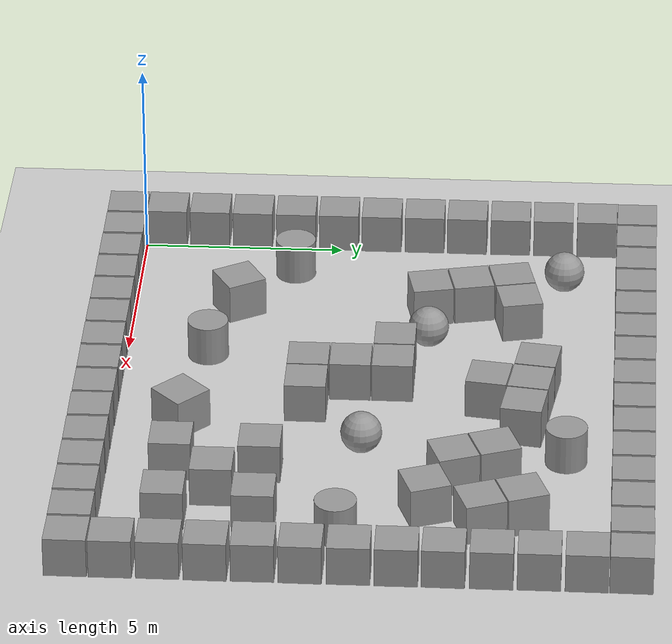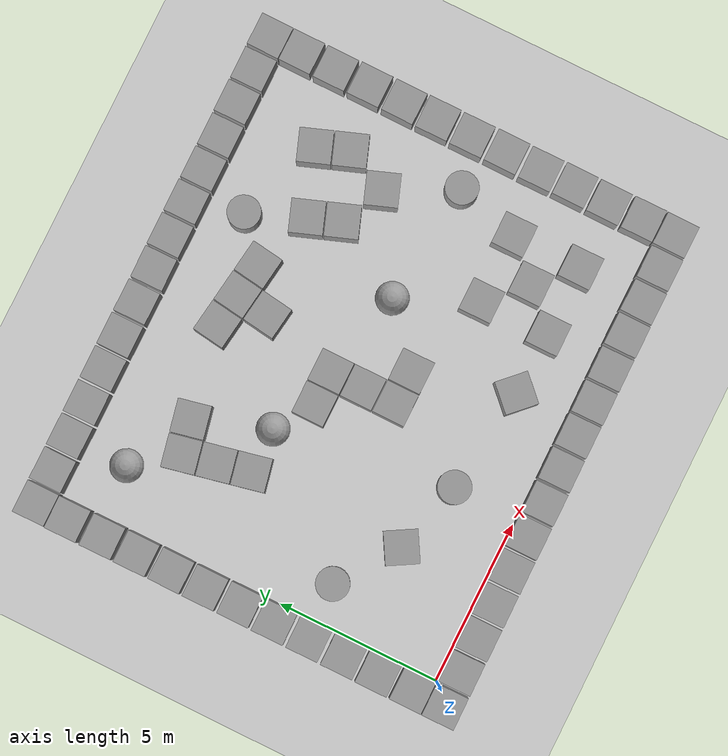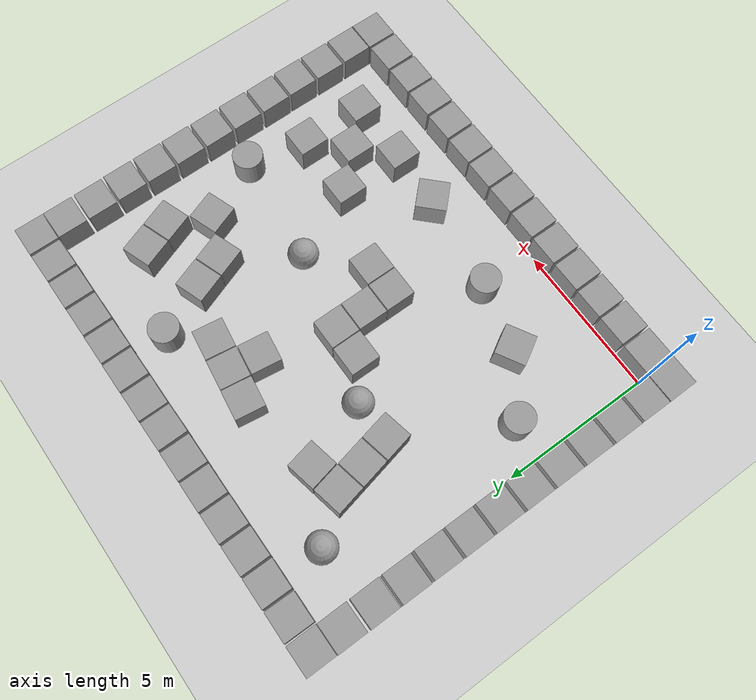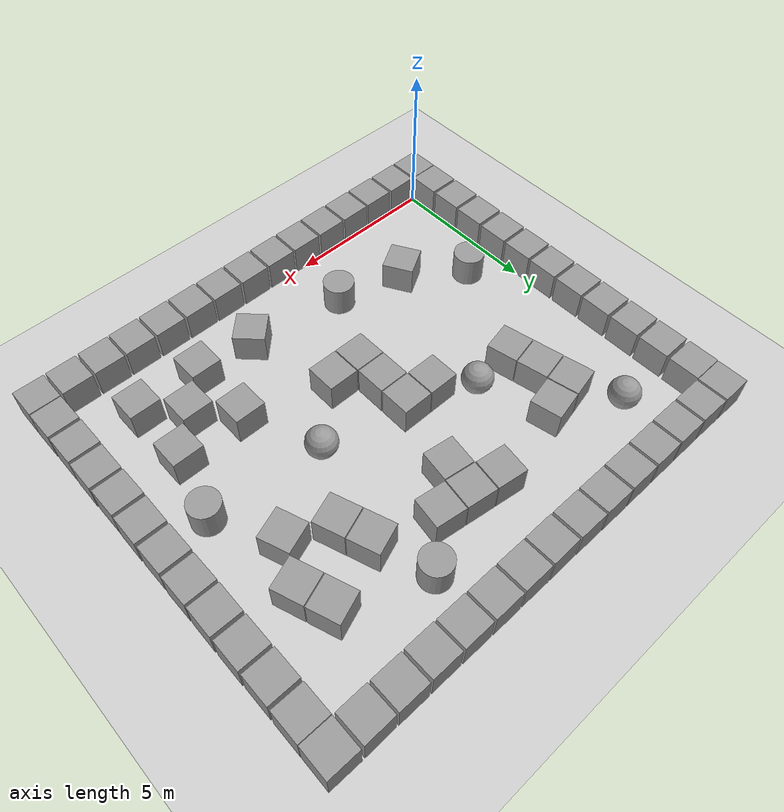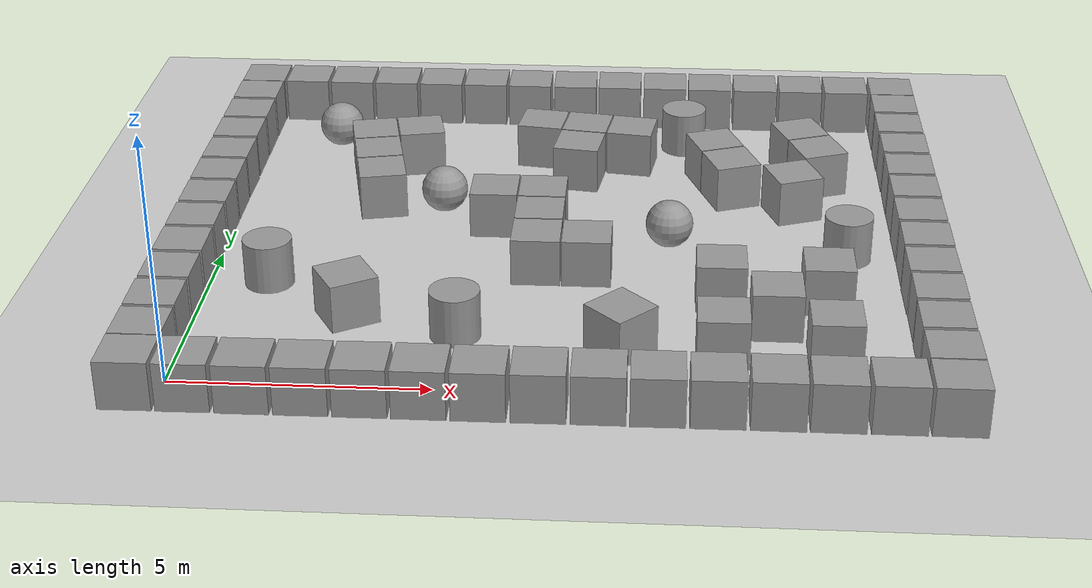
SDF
<?xml version="1.0"?>
<sdf version="1.6">
  <world name="open_test">
    <include><uri>model://ground_plane</uri></include>
    <include><uri>model://sun</uri></include>
    <physics type="ode"><real_time_update_rate>1000.0</real_time_update_rate><max_step_size>0.001</max_step_size><real_time_factor>1</real_time_factor><ode><solver><type>quick</type><iters>150</iters><precon_iters>0</precon_iters><sor>1.400000</sor><use_dynamic_moi_rescaling>1</use_dynamic_moi_rescaling></solver><constraints><cfm>0.00001</cfm><erp>0.2</erp><contact_max_correcting_vel>2000.000000</contact_max_correcting_vel><contact_surface_layer>0.01000</contact_surface_layer></constraints></ode></physics>
    <scene><shadows>false</shadows></scene>
    <gui fullscreen="0"><camera name="user_camera"><pose>7 -7 16 0 0.95 1.5707</pose><view_controller>orbit</view_controller><projection_type>perspective</projection_type></camera></gui>
    <model name='unit_box_0'>
      <pose>-0.4992 -0.4984 0.5 0 0 0.00664</pose>
      <link name='link'><inertial><mass>1</mass><inertia><ixx>0.166667</ixx><ixy>0</ixy><ixz>0</ixz><iyy>0.166667</iyy><iyz>0</iyz><izz>0.166667</izz></inertia></inertial>
        <collision name='collision'><geometry><box><size>1 1 1</size></box></geometry><max_contacts>10</max_contacts></collision>
        <visual name='visual'><geometry><box><size>1 1 1</size></box></geometry><material><script><uri>file://media/materials/scripts/gazebo.material</uri><name>Gazebo/Grey</name></script></material></visual>
      </link>
    </model>
    <model name='unit_box_1'>
      <pose>0.5688 -0.4982 0.5 0 0 0.00819</pose>
      <link name='link'><inertial><mass>1</mass><inertia><ixx>0.166667</ixx><ixy>0</ixy><ixz>0</ixz><iyy>0.166667</iyy><iyz>0</iyz><izz>0.166667</izz></inertia></inertial>
        <collision name='collision'><geometry><box><size>1 1 1</size></box></geometry><max_contacts>10</max_contacts></collision>
        <visual name='visual'><geometry><box><size>1 1 1</size></box></geometry><material><script><uri>file://media/materials/scripts/gazebo.material</uri><name>Gazebo/Grey</name></script></material></visual>
      </link>
    </model>
    <model name='unit_box_2'>
      <pose>1.6478 -0.5038 0.5 0 0 0.00318</pose>
      <link name='link'><inertial><mass>1</mass><inertia><ixx>0.166667</ixx><ixy>0</ixy><ixz>0</ixz><iyy>0.166667</iyy><iyz>0</iyz><izz>0.166667</izz></inertia></inertial>
        <collision name='collision'><geometry><box><size>1 1 1</size></box></geometry><max_contacts>10</max_contacts></collision>
        <visual name='visual'><geometry><box><size>1 1 1</size></box></geometry><material><script><uri>file://media/materials/scripts/gazebo.material</uri><name>Gazebo/Grey</name></script></material></visual>
      </link>
    </model>
    <model name='unit_box_3'>
      <pose>2.7157 -0.5000 0.5 0 0 0.00976</pose>
      <link name='link'><inertial><mass>1</mass><inertia><ixx>0.166667</ixx><ixy>0</ixy><ixz>0</ixz><iyy>0.166667</iyy><iyz>0</iyz><izz>0.166667</izz></inertia></inertial>
        <collision name='collision'><geometry><box><size>1 1 1</size></box></geometry><max_contacts>10</max_contacts></collision>
        <visual name='visual'><geometry><box><size>1 1 1</size></box></geometry><material><script><uri>file://media/materials/scripts/gazebo.material</uri><name>Gazebo/Grey</name></script></material></visual>
      </link>
    </model>
    <model name='unit_box_4'>
      <pose>3.7861 -0.5007 0.5 0 0 0.00929</pose>
      <link name='link'><inertial><mass>1</mass><inertia><ixx>0.166667</ixx><ixy>0</ixy><ixz>0</ixz><iyy>0.166667</iyy><iyz>0</iyz><izz>0.166667</izz></inertia></inertial>
        <collision name='collision'><geometry><box><size>1 1 1</size></box></geometry><max_contacts>10</max_contacts></collision>
        <visual name='visual'><geometry><box><size>1 1 1</size></box></geometry><material><script><uri>file://media/materials/scripts/gazebo.material</uri><name>Gazebo/Grey</name></script></material></visual>
      </link>
    </model>
    <model name='unit_box_5'>
      <pose>4.8588 -0.5024 0.5 0 0 -0.00399</pose>
      <link name='link'><inertial><mass>1</mass><inertia><ixx>0.166667</ixx><ixy>0</ixy><ixz>0</ixz><iyy>0.166667</iyy><iyz>0</iyz><izz>0.166667</izz></inertia></inertial>
        <collision name='collision'><geometry><box><size>1 1 1</size></box></geometry><max_contacts>10</max_contacts></collision>
        <visual name='visual'><geometry><box><size>1 1 1</size></box></geometry><material><script><uri>file://media/materials/scripts/gazebo.material</uri><name>Gazebo/Grey</name></script></material></visual>
      </link>
    </model>
    <model name='unit_box_6'>
      <pose>5.9285 -0.5054 0.5 0 0 0.00225</pose>
      <link name='link'><inertial><mass>1</mass><inertia><ixx>0.166667</ixx><ixy>0</ixy><ixz>0</ixz><iyy>0.166667</iyy><iyz>0</iyz><izz>0.166667</izz></inertia></inertial>
        <collision name='collision'><geometry><box><size>1 1 1</size></box></geometry><max_contacts>10</max_contacts></collision>
        <visual name='visual'><geometry><box><size>1 1 1</size></box></geometry><material><script><uri>file://media/materials/scripts/gazebo.material</uri><name>Gazebo/Grey</name></script></material></visual>
      </link>
    </model>
    <model name='unit_box_7'>
      <pose>7.0028 -0.5009 0.5 0 0 0.00726</pose>
      <link name='link'><inertial><mass>1</mass><inertia><ixx>0.166667</ixx><ixy>0</ixy><ixz>0</ixz><iyy>0.166667</iyy><iyz>0</iyz><izz>0.166667</izz></inertia></inertial>
        <collision name='collision'><geometry><box><size>1 1 1</size></box></geometry><max_contacts>10</max_contacts></collision>
        <visual name='visual'><geometry><box><size>1 1 1</size></box></geometry><material><script><uri>file://media/materials/scripts/gazebo.material</uri><name>Gazebo/Grey</name></script></material></visual>
      </link>
    </model>
    <model name='unit_box_8'>
      <pose>8.0766 -0.4993 0.5 0 0 0.00380</pose>
      <link name='link'><inertial><mass>1</mass><inertia><ixx>0.166667</ixx><ixy>0</ixy><ixz>0</ixz><iyy>0.166667</iyy><iyz>0</iyz><izz>0.166667</izz></inertia></inertial>
        <collision name='collision'><geometry><box><size>1 1 1</size></box></geometry><max_contacts>10</max_contacts></collision>
        <visual name='visual'><geometry><box><size>1 1 1</size></box></geometry><material><script><uri>file://media/materials/scripts/gazebo.material</uri><name>Gazebo/Grey</name></script></material></visual>
      </link>
    </model>
    <model name='unit_box_9'>
      <pose>9.1383 -0.5053 0.5 0 0 0.01005</pose>
      <link name='link'><inertial><mass>1</mass><inertia><ixx>0.166667</ixx><ixy>0</ixy><ixz>0</ixz><iyy>0.166667</iyy><iyz>0</iyz><izz>0.166667</izz></inertia></inertial>
        <collision name='collision'><geometry><box><size>1 1 1</size></box></geometry><max_contacts>10</max_contacts></collision>
        <visual name='visual'><geometry><box><size>1 1 1</size></box></geometry><material><script><uri>file://media/materials/scripts/gazebo.material</uri><name>Gazebo/Grey</name></script></material></visual>
      </link>
    </model>
    <model name='unit_box_10'>
      <pose>10.2117 -0.5034 0.5 0 0 0.00831</pose>
      <link name='link'><inertial><mass>1</mass><inertia><ixx>0.166667</ixx><ixy>0</ixy><ixz>0</ixz><iyy>0.166667</iyy><iyz>0</iyz><izz>0.166667</izz></inertia></inertial>
        <collision name='collision'><geometry><box><size>1 1 1</size></box></geometry><max_contacts>10</max_contacts></collision>
        <visual name='visual'><geometry><box><size>1 1 1</size></box></geometry><material><script><uri>file://media/materials/scripts/gazebo.material</uri><name>Gazebo/Grey</name></script></material></visual>
      </link>
    </model>
    <model name='unit_box_11'>
      <pose>11.2887 -0.5045 0.5 0 0 -0.00373</pose>
      <link name='link'><inertial><mass>1</mass><inertia><ixx>0.166667</ixx><ixy>0</ixy><ixz>0</ixz><iyy>0.166667</iyy><iyz>0</iyz><izz>0.166667</izz></inertia></inertial>
        <collision name='collision'><geometry><box><size>1 1 1</size></box></geometry><max_contacts>10</max_contacts></collision>
        <visual name='visual'><geometry><box><size>1 1 1</size></box></geometry><material><script><uri>file://media/materials/scripts/gazebo.material</uri><name>Gazebo/Grey</name></script></material></visual>
      </link>
    </model>
    <model name='unit_box_12'>
      <pose>12.3541 -0.5027 0.5 0 0 -0.01034</pose>
      <link name='link'><inertial><mass>1</mass><inertia><ixx>0.166667</ixx><ixy>0</ixy><ixz>0</ixz><iyy>0.166667</iyy><iyz>0</iyz><izz>0.166667</izz></inertia></inertial>
        <collision name='collision'><geometry><box><size>1 1 1</size></box></geometry><max_contacts>10</max_contacts></collision>
        <visual name='visual'><geometry><box><size>1 1 1</size></box></geometry><material><script><uri>file://media/materials/scripts/gazebo.material</uri><name>Gazebo/Grey</name></script></material></visual>
      </link>
    </model>
    <model name='unit_box_13'>
      <pose>13.4289 -0.5023 0.5 0 0 -0.00222</pose>
      <link name='link'><inertial><mass>1</mass><inertia><ixx>0.166667</ixx><ixy>0</ixy><ixz>0</ixz><iyy>0.166667</iyy><iyz>0</iyz><izz>0.166667</izz></inertia></inertial>
        <collision name='collision'><geometry><box><size>1 1 1</size></box></geometry><max_contacts>10</max_contacts></collision>
        <visual name='visual'><geometry><box><size>1 1 1</size></box></geometry><material><script><uri>file://media/materials/scripts/gazebo.material</uri><name>Gazebo/Grey</name></script></material></visual>
      </link>
    </model>
    <model name='unit_box_14'>
      <pose>14.4962 -0.5047 0.5 0 0 -0.00978</pose>
      <link name='link'><inertial><mass>1</mass><inertia><ixx>0.166667</ixx><ixy>0</ixy><ixz>0</ixz><iyy>0.166667</iyy><iyz>0</iyz><izz>0.166667</izz></inertia></inertial>
        <collision name='collision'><geometry><box><size>1 1 1</size></box></geometry><max_contacts>10</max_contacts></collision>
        <visual name='visual'><geometry><box><size>1 1 1</size></box></geometry><material><script><uri>file://media/materials/scripts/gazebo.material</uri><name>Gazebo/Grey</name></script></material></visual>
      </link>
    </model>
    <model name='unit_box_15'>
      <pose>-0.4955 12.5030 0.5 0 0 0.00125</pose>
      <link name='link'><inertial><mass>1</mass><inertia><ixx>0.166667</ixx><ixy>0</ixy><ixz>0</ixz><iyy>0.166667</iyy><iyz>0</iyz><izz>0.166667</izz></inertia></inertial>
        <collision name='collision'><geometry><box><size>1 1 1</size></box></geometry><max_contacts>10</max_contacts></collision>
        <visual name='visual'><geometry><box><size>1 1 1</size></box></geometry><material><script><uri>file://media/materials/scripts/gazebo.material</uri><name>Gazebo/Grey</name></script></material></visual>
      </link>
    </model>
    <model name='unit_box_16'>
      <pose>0.5669 12.4958 0.5 0 0 -0.00797</pose>
      <link name='link'><inertial><mass>1</mass><inertia><ixx>0.166667</ixx><ixy>0</ixy><ixz>0</ixz><iyy>0.166667</iyy><iyz>0</iyz><izz>0.166667</izz></inertia></inertial>
        <collision name='collision'><geometry><box><size>1 1 1</size></box></geometry><max_contacts>10</max_contacts></collision>
        <visual name='visual'><geometry><box><size>1 1 1</size></box></geometry><material><script><uri>file://media/materials/scripts/gazebo.material</uri><name>Gazebo/Grey</name></script></material></visual>
      </link>
    </model>
    <model name='unit_box_17'>
      <pose>1.6407 12.4947 0.5 0 0 -0.00470</pose>
      <link name='link'><inertial><mass>1</mass><inertia><ixx>0.166667</ixx><ixy>0</ixy><ixz>0</ixz><iyy>0.166667</iyy><iyz>0</iyz><izz>0.166667</izz></inertia></inertial>
        <collision name='collision'><geometry><box><size>1 1 1</size></box></geometry><max_contacts>10</max_contacts></collision>
        <visual name='visual'><geometry><box><size>1 1 1</size></box></geometry><material><script><uri>file://media/materials/scripts/gazebo.material</uri><name>Gazebo/Grey</name></script></material></visual>
      </link>
    </model>
    <model name='unit_box_18'>
      <pose>2.7107 12.4963 0.5 0 0 0.00322</pose>
      <link name='link'><inertial><mass>1</mass><inertia><ixx>0.166667</ixx><ixy>0</ixy><ixz>0</ixz><iyy>0.166667</iyy><iyz>0</iyz><izz>0.166667</izz></inertia></inertial>
        <collision name='collision'><geometry><box><size>1 1 1</size></box></geometry><max_contacts>10</max_contacts></collision>
        <visual name='visual'><geometry><box><size>1 1 1</size></box></geometry><material><script><uri>file://media/materials/scripts/gazebo.material</uri><name>Gazebo/Grey</name></script></material></visual>
      </link>
    </model>
    <model name='unit_box_19'>
      <pose>3.7852 12.4997 0.5 0 0 -0.00297</pose>
      <link name='link'><inertial><mass>1</mass><inertia><ixx>0.166667</ixx><ixy>0</ixy><ixz>0</ixz><iyy>0.166667</iyy><iyz>0</iyz><izz>0.166667</izz></inertia></inertial>
        <collision name='collision'><geometry><box><size>1 1 1</size></box></geometry><max_contacts>10</max_contacts></collision>
        <visual name='visual'><geometry><box><size>1 1 1</size></box></geometry><material><script><uri>file://media/materials/scripts/gazebo.material</uri><name>Gazebo/Grey</name></script></material></visual>
      </link>
    </model>
    <model name='unit_box_20'>
      <pose>4.8576 12.5034 0.5 0 0 -0.00402</pose>
      <link name='link'><inertial><mass>1</mass><inertia><ixx>0.166667</ixx><ixy>0</ixy><ixz>0</ixz><iyy>0.166667</iyy><iyz>0</iyz><izz>0.166667</izz></inertia></inertial>
        <collision name='collision'><geometry><box><size>1 1 1</size></box></geometry><max_contacts>10</max_contacts></collision>
        <visual name='visual'><geometry><box><size>1 1 1</size></box></geometry><material><script><uri>file://media/materials/scripts/gazebo.material</uri><name>Gazebo/Grey</name></script></material></visual>
      </link>
    </model>
    <model name='unit_box_21'>
      <pose>5.9234 12.4998 0.5 0 0 -0.00253</pose>
      <link name='link'><inertial><mass>1</mass><inertia><ixx>0.166667</ixx><ixy>0</ixy><ixz>0</ixz><iyy>0.166667</iyy><iyz>0</iyz><izz>0.166667</izz></inertia></inertial>
        <collision name='collision'><geometry><box><size>1 1 1</size></box></geometry><max_contacts>10</max_contacts></collision>
        <visual name='visual'><geometry><box><size>1 1 1</size></box></geometry><material><script><uri>file://media/materials/scripts/gazebo.material</uri><name>Gazebo/Grey</name></script></material></visual>
      </link>
    </model>
    <model name='unit_box_22'>
      <pose>7.0034 12.4953 0.5 0 0 0.00781</pose>
      <link name='link'><inertial><mass>1</mass><inertia><ixx>0.166667</ixx><ixy>0</ixy><ixz>0</ixz><iyy>0.166667</iyy><iyz>0</iyz><izz>0.166667</izz></inertia></inertial>
        <collision name='collision'><geometry><box><size>1 1 1</size></box></geometry><max_contacts>10</max_contacts></collision>
        <visual name='visual'><geometry><box><size>1 1 1</size></box></geometry><material><script><uri>file://media/materials/scripts/gazebo.material</uri><name>Gazebo/Grey</name></script></material></visual>
      </link>
    </model>
    <model name='unit_box_23'>
      <pose>8.0656 12.5005 0.5 0 0 -0.00118</pose>
      <link name='link'><inertial><mass>1</mass><inertia><ixx>0.166667</ixx><ixy>0</ixy><ixz>0</ixz><iyy>0.166667</iyy><iyz>0</iyz><izz>0.166667</izz></inertia></inertial>
        <collision name='collision'><geometry><box><size>1 1 1</size></box></geometry><max_contacts>10</max_contacts></collision>
        <visual name='visual'><geometry><box><size>1 1 1</size></box></geometry><material><script><uri>file://media/materials/scripts/gazebo.material</uri><name>Gazebo/Grey</name></script></material></visual>
      </link>
    </model>
    <model name='unit_box_24'>
      <pose>9.1406 12.5047 0.5 0 0 0.00423</pose>
      <link name='link'><inertial><mass>1</mass><inertia><ixx>0.166667</ixx><ixy>0</ixy><ixz>0</ixz><iyy>0.166667</iyy><iyz>0</iyz><izz>0.166667</izz></inertia></inertial>
        <collision name='collision'><geometry><box><size>1 1 1</size></box></geometry><max_contacts>10</max_contacts></collision>
        <visual name='visual'><geometry><box><size>1 1 1</size></box></geometry><material><script><uri>file://media/materials/scripts/gazebo.material</uri><name>Gazebo/Grey</name></script></material></visual>
      </link>
    </model>
    <model name='unit_box_25'>
      <pose>10.2102 12.4999 0.5 0 0 0.00235</pose>
      <link name='link'><inertial><mass>1</mass><inertia><ixx>0.166667</ixx><ixy>0</ixy><ixz>0</ixz><iyy>0.166667</iyy><iyz>0</iyz><izz>0.166667</izz></inertia></inertial>
        <collision name='collision'><geometry><box><size>1 1 1</size></box></geometry><max_contacts>10</max_contacts></collision>
        <visual name='visual'><geometry><box><size>1 1 1</size></box></geometry><material><script><uri>file://media/materials/scripts/gazebo.material</uri><name>Gazebo/Grey</name></script></material></visual>
      </link>
    </model>
    <model name='unit_box_26'>
      <pose>11.2801 12.4950 0.5 0 0 0.00213</pose>
      <link name='link'><inertial><mass>1</mass><inertia><ixx>0.166667</ixx><ixy>0</ixy><ixz>0</ixz><iyy>0.166667</iyy><iyz>0</iyz><izz>0.166667</izz></inertia></inertial>
        <collision name='collision'><geometry><box><size>1 1 1</size></box></geometry><max_contacts>10</max_contacts></collision>
        <visual name='visual'><geometry><box><size>1 1 1</size></box></geometry><material><script><uri>file://media/materials/scripts/gazebo.material</uri><name>Gazebo/Grey</name></script></material></visual>
      </link>
    </model>
    <model name='unit_box_27'>
      <pose>12.3599 12.4996 0.5 0 0 -0.00163</pose>
      <link name='link'><inertial><mass>1</mass><inertia><ixx>0.166667</ixx><ixy>0</ixy><ixz>0</ixz><iyy>0.166667</iyy><iyz>0</iyz><izz>0.166667</izz></inertia></inertial>
        <collision name='collision'><geometry><box><size>1 1 1</size></box></geometry><max_contacts>10</max_contacts></collision>
        <visual name='visual'><geometry><box><size>1 1 1</size></box></geometry><material><script><uri>file://media/materials/scripts/gazebo.material</uri><name>Gazebo/Grey</name></script></material></visual>
      </link>
    </model>
    <model name='unit_box_28'>
      <pose>13.4287 12.4971 0.5 0 0 0.00789</pose>
      <link name='link'><inertial><mass>1</mass><inertia><ixx>0.166667</ixx><ixy>0</ixy><ixz>0</ixz><iyy>0.166667</iyy><iyz>0</iyz><izz>0.166667</izz></inertia></inertial>
        <collision name='collision'><geometry><box><size>1 1 1</size></box></geometry><max_contacts>10</max_contacts></collision>
        <visual name='visual'><geometry><box><size>1 1 1</size></box></geometry><material><script><uri>file://media/materials/scripts/gazebo.material</uri><name>Gazebo/Grey</name></script></material></visual>
      </link>
    </model>
    <model name='unit_box_29'>
      <pose>14.5055 12.4998 0.5 0 0 -0.01004</pose>
      <link name='link'><inertial><mass>1</mass><inertia><ixx>0.166667</ixx><ixy>0</ixy><ixz>0</ixz><iyy>0.166667</iyy><iyz>0</iyz><izz>0.166667</izz></inertia></inertial>
        <collision name='collision'><geometry><box><size>1 1 1</size></box></geometry><max_contacts>10</max_contacts></collision>
        <visual name='visual'><geometry><box><size>1 1 1</size></box></geometry><material><script><uri>file://media/materials/scripts/gazebo.material</uri><name>Gazebo/Grey</name></script></material></visual>
      </link>
    </model>
    <model name='unit_box_30'>
      <pose>-0.5012 0.5236 0.5 0 0 -0.00367</pose>
      <link name='link'><inertial><mass>1</mass><inertia><ixx>0.166667</ixx><ixy>0</ixy><ixz>0</ixz><iyy>0.166667</iyy><iyz>0</iyz><izz>0.166667</izz></inertia></inertial>
        <collision name='collision'><geometry><box><size>1 1 1</size></box></geometry><max_contacts>10</max_contacts></collision>
        <visual name='visual'><geometry><box><size>1 1 1</size></box></geometry><material><script><uri>file://media/materials/scripts/gazebo.material</uri><name>Gazebo/Grey</name></script></material></visual>
      </link>
    </model>
    <model name='unit_box_31'>
      <pose>-0.5047 1.6122 0.5 0 0 0.00443</pose>
      <link name='link'><inertial><mass>1</mass><inertia><ixx>0.166667</ixx><ixy>0</ixy><ixz>0</ixz><iyy>0.166667</iyy><iyz>0</iyz><izz>0.166667</izz></inertia></inertial>
        <collision name='collision'><geometry><box><size>1 1 1</size></box></geometry><max_contacts>10</max_contacts></collision>
        <visual name='visual'><geometry><box><size>1 1 1</size></box></geometry><material><script><uri>file://media/materials/scripts/gazebo.material</uri><name>Gazebo/Grey</name></script></material></visual>
      </link>
    </model>
    <model name='unit_box_32'>
      <pose>-0.4985 2.7094 0.5 0 0 0.00259</pose>
      <link name='link'><inertial><mass>1</mass><inertia><ixx>0.166667</ixx><ixy>0</ixy><ixz>0</ixz><iyy>0.166667</iyy><iyz>0</iyz><izz>0.166667</izz></inertia></inertial>
        <collision name='collision'><geometry><box><size>1 1 1</size></box></geometry><max_contacts>10</max_contacts></collision>
        <visual name='visual'><geometry><box><size>1 1 1</size></box></geometry><material><script><uri>file://media/materials/scripts/gazebo.material</uri><name>Gazebo/Grey</name></script></material></visual>
      </link>
    </model>
    <model name='unit_box_33'>
      <pose>-0.4969 3.8136 0.5 0 0 0.00694</pose>
      <link name='link'><inertial><mass>1</mass><inertia><ixx>0.166667</ixx><ixy>0</ixy><ixz>0</ixz><iyy>0.166667</iyy><iyz>0</iyz><izz>0.166667</izz></inertia></inertial>
        <collision name='collision'><geometry><box><size>1 1 1</size></box></geometry><max_contacts>10</max_contacts></collision>
        <visual name='visual'><geometry><box><size>1 1 1</size></box></geometry><material><script><uri>file://media/materials/scripts/gazebo.material</uri><name>Gazebo/Grey</name></script></material></visual>
      </link>
    </model>
    <model name='unit_box_34'>
      <pose>-0.5008 4.9077 0.5 0 0 0.00891</pose>
      <link name='link'><inertial><mass>1</mass><inertia><ixx>0.166667</ixx><ixy>0</ixy><ixz>0</ixz><iyy>0.166667</iyy><iyz>0</iyz><izz>0.166667</izz></inertia></inertial>
        <collision name='collision'><geometry><box><size>1 1 1</size></box></geometry><max_contacts>10</max_contacts></collision>
        <visual name='visual'><geometry><box><size>1 1 1</size></box></geometry><material><script><uri>file://media/materials/scripts/gazebo.material</uri><name>Gazebo/Grey</name></script></material></visual>
      </link>
    </model>
    <model name='unit_box_35'>
      <pose>-0.4956 6.0030 0.5 0 0 0.00181</pose>
      <link name='link'><inertial><mass>1</mass><inertia><ixx>0.166667</ixx><ixy>0</ixy><ixz>0</ixz><iyy>0.166667</iyy><iyz>0</iyz><izz>0.166667</izz></inertia></inertial>
        <collision name='collision'><geometry><box><size>1 1 1</size></box></geometry><max_contacts>10</max_contacts></collision>
        <visual name='visual'><geometry><box><size>1 1 1</size></box></geometry><material><script><uri>file://media/materials/scripts/gazebo.material</uri><name>Gazebo/Grey</name></script></material></visual>
      </link>
    </model>
    <model name='unit_box_36'>
      <pose>-0.4999 7.1002 0.5 0 0 0.00262</pose>
      <link name='link'><inertial><mass>1</mass><inertia><ixx>0.166667</ixx><ixy>0</ixy><ixz>0</ixz><iyy>0.166667</iyy><iyz>0</iyz><izz>0.166667</izz></inertia></inertial>
        <collision name='collision'><geometry><box><size>1 1 1</size></box></geometry><max_contacts>10</max_contacts></collision>
        <visual name='visual'><geometry><box><size>1 1 1</size></box></geometry><material><script><uri>file://media/materials/scripts/gazebo.material</uri><name>Gazebo/Grey</name></script></material></visual>
      </link>
    </model>
    <model name='unit_box_37'>
      <pose>-0.4973 8.1887 0.5 0 0 -0.00854</pose>
      <link name='link'><inertial><mass>1</mass><inertia><ixx>0.166667</ixx><ixy>0</ixy><ixz>0</ixz><iyy>0.166667</iyy><iyz>0</iyz><izz>0.166667</izz></inertia></inertial>
        <collision name='collision'><geometry><box><size>1 1 1</size></box></geometry><max_contacts>10</max_contacts></collision>
        <visual name='visual'><geometry><box><size>1 1 1</size></box></geometry><material><script><uri>file://media/materials/scripts/gazebo.material</uri><name>Gazebo/Grey</name></script></material></visual>
      </link>
    </model>
    <model name='unit_box_38'>
      <pose>-0.5028 9.2890 0.5 0 0 0.00153</pose>
      <link name='link'><inertial><mass>1</mass><inertia><ixx>0.166667</ixx><ixy>0</ixy><ixz>0</ixz><iyy>0.166667</iyy><iyz>0</iyz><izz>0.166667</izz></inertia></inertial>
        <collision name='collision'><geometry><box><size>1 1 1</size></box></geometry><max_contacts>10</max_contacts></collision>
        <visual name='visual'><geometry><box><size>1 1 1</size></box></geometry><material><script><uri>file://media/materials/scripts/gazebo.material</uri><name>Gazebo/Grey</name></script></material></visual>
      </link>
    </model>
    <model name='unit_box_39'>
      <pose>-0.5036 10.3803 0.5 0 0 0.00943</pose>
      <link name='link'><inertial><mass>1</mass><inertia><ixx>0.166667</ixx><ixy>0</ixy><ixz>0</ixz><iyy>0.166667</iyy><iyz>0</iyz><izz>0.166667</izz></inertia></inertial>
        <collision name='collision'><geometry><box><size>1 1 1</size></box></geometry><max_contacts>10</max_contacts></collision>
        <visual name='visual'><geometry><box><size>1 1 1</size></box></geometry><material><script><uri>file://media/materials/scripts/gazebo.material</uri><name>Gazebo/Grey</name></script></material></visual>
      </link>
    </model>
    <model name='unit_box_40'>
      <pose>-0.5051 11.4851 0.5 0 0 0.00570</pose>
      <link name='link'><inertial><mass>1</mass><inertia><ixx>0.166667</ixx><ixy>0</ixy><ixz>0</ixz><iyy>0.166667</iyy><iyz>0</iyz><izz>0.166667</izz></inertia></inertial>
        <collision name='collision'><geometry><box><size>1 1 1</size></box></geometry><max_contacts>10</max_contacts></collision>
        <visual name='visual'><geometry><box><size>1 1 1</size></box></geometry><material><script><uri>file://media/materials/scripts/gazebo.material</uri><name>Gazebo/Grey</name></script></material></visual>
      </link>
    </model>
    <model name='unit_box_41'>
      <pose>14.5009 0.5259 0.5 0 0 0.00376</pose>
      <link name='link'><inertial><mass>1</mass><inertia><ixx>0.166667</ixx><ixy>0</ixy><ixz>0</ixz><iyy>0.166667</iyy><iyz>0</iyz><izz>0.166667</izz></inertia></inertial>
        <collision name='collision'><geometry><box><size>1 1 1</size></box></geometry><max_contacts>10</max_contacts></collision>
        <visual name='visual'><geometry><box><size>1 1 1</size></box></geometry><material><script><uri>file://media/materials/scripts/gazebo.material</uri><name>Gazebo/Grey</name></script></material></visual>
      </link>
    </model>
    <model name='unit_box_42'>
      <pose>14.4941 1.6213 0.5 0 0 -0.00181</pose>
      <link name='link'><inertial><mass>1</mass><inertia><ixx>0.166667</ixx><ixy>0</ixy><ixz>0</ixz><iyy>0.166667</iyy><iyz>0</iyz><izz>0.166667</izz></inertia></inertial>
        <collision name='collision'><geometry><box><size>1 1 1</size></box></geometry><max_contacts>10</max_contacts></collision>
        <visual name='visual'><geometry><box><size>1 1 1</size></box></geometry><material><script><uri>file://media/materials/scripts/gazebo.material</uri><name>Gazebo/Grey</name></script></material></visual>
      </link>
    </model>
    <model name='unit_box_43'>
      <pose>14.5050 2.7158 0.5 0 0 -0.00758</pose>
      <link name='link'><inertial><mass>1</mass><inertia><ixx>0.166667</ixx><ixy>0</ixy><ixz>0</ixz><iyy>0.166667</iyy><iyz>0</iyz><izz>0.166667</izz></inertia></inertial>
        <collision name='collision'><geometry><box><size>1 1 1</size></box></geometry><max_contacts>10</max_contacts></collision>
        <visual name='visual'><geometry><box><size>1 1 1</size></box></geometry><material><script><uri>file://media/materials/scripts/gazebo.material</uri><name>Gazebo/Grey</name></script></material></visual>
      </link>
    </model>
    <model name='unit_box_44'>
      <pose>14.4945 3.8022 0.5 0 0 0.00588</pose>
      <link name='link'><inertial><mass>1</mass><inertia><ixx>0.166667</ixx><ixy>0</ixy><ixz>0</ixz><iyy>0.166667</iyy><iyz>0</iyz><izz>0.166667</izz></inertia></inertial>
        <collision name='collision'><geometry><box><size>1 1 1</size></box></geometry><max_contacts>10</max_contacts></collision>
        <visual name='visual'><geometry><box><size>1 1 1</size></box></geometry><material><script><uri>file://media/materials/scripts/gazebo.material</uri><name>Gazebo/Grey</name></script></material></visual>
      </link>
    </model>
    <model name='unit_box_45'>
      <pose>14.5035 4.9007 0.5 0 0 -0.00811</pose>
      <link name='link'><inertial><mass>1</mass><inertia><ixx>0.166667</ixx><ixy>0</ixy><ixz>0</ixz><iyy>0.166667</iyy><iyz>0</iyz><izz>0.166667</izz></inertia></inertial>
        <collision name='collision'><geometry><box><size>1 1 1</size></box></geometry><max_contacts>10</max_contacts></collision>
        <visual name='visual'><geometry><box><size>1 1 1</size></box></geometry><material><script><uri>file://media/materials/scripts/gazebo.material</uri><name>Gazebo/Grey</name></script></material></visual>
      </link>
    </model>
    <model name='unit_box_46'>
      <pose>14.4984 6.0036 0.5 0 0 0.00504</pose>
      <link name='link'><inertial><mass>1</mass><inertia><ixx>0.166667</ixx><ixy>0</ixy><ixz>0</ixz><iyy>0.166667</iyy><iyz>0</iyz><izz>0.166667</izz></inertia></inertial>
        <collision name='collision'><geometry><box><size>1 1 1</size></box></geometry><max_contacts>10</max_contacts></collision>
        <visual name='visual'><geometry><box><size>1 1 1</size></box></geometry><material><script><uri>file://media/materials/scripts/gazebo.material</uri><name>Gazebo/Grey</name></script></material></visual>
      </link>
    </model>
    <model name='unit_box_47'>
      <pose>14.5044 7.1016 0.5 0 0 0.00533</pose>
      <link name='link'><inertial><mass>1</mass><inertia><ixx>0.166667</ixx><ixy>0</ixy><ixz>0</ixz><iyy>0.166667</iyy><iyz>0</iyz><izz>0.166667</izz></inertia></inertial>
        <collision name='collision'><geometry><box><size>1 1 1</size></box></geometry><max_contacts>10</max_contacts></collision>
        <visual name='visual'><geometry><box><size>1 1 1</size></box></geometry><material><script><uri>file://media/materials/scripts/gazebo.material</uri><name>Gazebo/Grey</name></script></material></visual>
      </link>
    </model>
    <model name='unit_box_48'>
      <pose>14.5040 8.1862 0.5 0 0 -0.01034</pose>
      <link name='link'><inertial><mass>1</mass><inertia><ixx>0.166667</ixx><ixy>0</ixy><ixz>0</ixz><iyy>0.166667</iyy><iyz>0</iyz><izz>0.166667</izz></inertia></inertial>
        <collision name='collision'><geometry><box><size>1 1 1</size></box></geometry><max_contacts>10</max_contacts></collision>
        <visual name='visual'><geometry><box><size>1 1 1</size></box></geometry><material><script><uri>file://media/materials/scripts/gazebo.material</uri><name>Gazebo/Grey</name></script></material></visual>
      </link>
    </model>
    <model name='unit_box_49'>
      <pose>14.5043 9.2894 0.5 0 0 -0.00363</pose>
      <link name='link'><inertial><mass>1</mass><inertia><ixx>0.166667</ixx><ixy>0</ixy><ixz>0</ixz><iyy>0.166667</iyy><iyz>0</iyz><izz>0.166667</izz></inertia></inertial>
        <collision name='collision'><geometry><box><size>1 1 1</size></box></geometry><max_contacts>10</max_contacts></collision>
        <visual name='visual'><geometry><box><size>1 1 1</size></box></geometry><material><script><uri>file://media/materials/scripts/gazebo.material</uri><name>Gazebo/Grey</name></script></material></visual>
      </link>
    </model>
    <model name='unit_box_50'>
      <pose>14.4955 10.3820 0.5 0 0 -0.00337</pose>
      <link name='link'><inertial><mass>1</mass><inertia><ixx>0.166667</ixx><ixy>0</ixy><ixz>0</ixz><iyy>0.166667</iyy><iyz>0</iyz><izz>0.166667</izz></inertia></inertial>
        <collision name='collision'><geometry><box><size>1 1 1</size></box></geometry><max_contacts>10</max_contacts></collision>
        <visual name='visual'><geometry><box><size>1 1 1</size></box></geometry><material><script><uri>file://media/materials/scripts/gazebo.material</uri><name>Gazebo/Grey</name></script></material></visual>
      </link>
    </model>
    <model name='unit_box_51'>
      <pose>14.4999 11.4794 0.5 0 0 -0.00624</pose>
      <link name='link'><inertial><mass>1</mass><inertia><ixx>0.166667</ixx><ixy>0</ixy><ixz>0</ixz><iyy>0.166667</iyy><iyz>0</iyz><izz>0.166667</izz></inertia></inertial>
        <collision name='collision'><geometry><box><size>1 1 1</size></box></geometry><max_contacts>10</max_contacts></collision>
        <visual name='visual'><geometry><box><size>1 1 1</size></box></geometry><material><script><uri>file://media/materials/scripts/gazebo.material</uri><name>Gazebo/Grey</name></script></material></visual>
      </link>
    </model>
    <model name='unit_box_52'>
      <pose>2.6000 9.4000 0.5 0 0 0.20944</pose>
      <link name='link'><inertial><mass>1</mass><inertia><ixx>0.166667</ixx><ixy>0</ixy><ixz>0</ixz><iyy>0.166667</iyy><iyz>0</iyz><izz>0.166667</izz></inertia></inertial>
        <collision name='collision'><geometry><box><size>1 1 1</size></box></geometry><max_contacts>10</max_contacts></collision>
        <visual name='visual'><geometry><box><size>1 1 1</size></box></geometry><material><script><uri>file://media/materials/scripts/gazebo.material</uri><name>Gazebo/Grey</name></script></material></visual>
      </link>
    </model>
    <model name='unit_box_53'>
      <pose>3.6075 9.6141 0.5 0 0 0.20944</pose>
      <link name='link'><inertial><mass>1</mass><inertia><ixx>0.166667</ixx><ixy>0</ixy><ixz>0</ixz><iyy>0.166667</iyy><iyz>0</iyz><izz>0.166667</izz></inertia></inertial>
        <collision name='collision'><geometry><box><size>1 1 1</size></box></geometry><max_contacts>10</max_contacts></collision>
        <visual name='visual'><geometry><box><size>1 1 1</size></box></geometry><material><script><uri>file://media/materials/scripts/gazebo.material</uri><name>Gazebo/Grey</name></script></material></visual>
      </link>
    </model>
    <model name='unit_box_54'>
      <pose>2.8141 8.3925 0.5 0 0 0.20944</pose>
      <link name='link'><inertial><mass>1</mass><inertia><ixx>0.166667</ixx><ixy>0</ixy><ixz>0</ixz><iyy>0.166667</iyy><iyz>0</iyz><izz>0.166667</izz></inertia></inertial>
        <collision name='collision'><geometry><box><size>1 1 1</size></box></geometry><max_contacts>10</max_contacts></collision>
        <visual name='visual'><geometry><box><size>1 1 1</size></box></geometry><material><script><uri>file://media/materials/scripts/gazebo.material</uri><name>Gazebo/Grey</name></script></material></visual>
      </link>
    </model>
    <model name='unit_box_55'>
      <pose>3.0283 7.3850 0.5 0 0 0.20944</pose>
      <link name='link'><inertial><mass>1</mass><inertia><ixx>0.166667</ixx><ixy>0</ixy><ixz>0</ixz><iyy>0.166667</iyy><iyz>0</iyz><izz>0.166667</izz></inertia></inertial>
        <collision name='collision'><geometry><box><size>1 1 1</size></box></geometry><max_contacts>10</max_contacts></collision>
        <visual name='visual'><geometry><box><size>1 1 1</size></box></geometry><material><script><uri>file://media/materials/scripts/gazebo.material</uri><name>Gazebo/Grey</name></script></material></visual>
      </link>
    </model>
    <model name='unit_box_56'>
      <pose>6.3800 10.1433 0.5 0 0 -0.13963</pose>
      <link name='link'><inertial><mass>1</mass><inertia><ixx>0.166667</ixx><ixy>0</ixy><ixz>0</ixz><iyy>0.166667</iyy><iyz>0</iyz><izz>0.166667</izz></inertia></inertial>
        <collision name='collision'><geometry><box><size>1 1 1</size></box></geometry><max_contacts>10</max_contacts></collision>
        <visual name='visual'><geometry><box><size>1 1 1</size></box></geometry><material><script><uri>file://media/materials/scripts/gazebo.material</uri><name>Gazebo/Grey</name></script></material></visual>
      </link>
    </model>
    <model name='unit_box_57'>
      <pose>7.4000 10.0000 0.5 0 0 -0.13963</pose>
      <link name='link'><inertial><mass>1</mass><inertia><ixx>0.166667</ixx><ixy>0</ixy><ixz>0</ixz><iyy>0.166667</iyy><iyz>0</iyz><izz>0.166667</izz></inertia></inertial>
        <collision name='collision'><geometry><box><size>1 1 1</size></box></geometry><max_contacts>10</max_contacts></collision>
        <visual name='visual'><geometry><box><size>1 1 1</size></box></geometry><material><script><uri>file://media/materials/scripts/gazebo.material</uri><name>Gazebo/Grey</name></script></material></visual>
      </link>
    </model>
    <model name='unit_box_58'>
      <pose>8.4200 9.8567 0.5 0 0 -0.13963</pose>
      <link name='link'><inertial><mass>1</mass><inertia><ixx>0.166667</ixx><ixy>0</ixy><ixz>0</ixz><iyy>0.166667</iyy><iyz>0</iyz><izz>0.166667</izz></inertia></inertial>
        <collision name='collision'><geometry><box><size>1 1 1</size></box></geometry><max_contacts>10</max_contacts></collision>
        <visual name='visual'><geometry><box><size>1 1 1</size></box></geometry><material><script><uri>file://media/materials/scripts/gazebo.material</uri><name>Gazebo/Grey</name></script></material></visual>
      </link>
    </model>
    <model name='unit_box_59'>
      <pose>7.2567 8.9800 0.5 0 0 -0.13963</pose>
      <link name='link'><inertial><mass>1</mass><inertia><ixx>0.166667</ixx><ixy>0</ixy><ixz>0</ixz><iyy>0.166667</iyy><iyz>0</iyz><izz>0.166667</izz></inertia></inertial>
        <collision name='collision'><geometry><box><size>1 1 1</size></box></geometry><max_contacts>10</max_contacts></collision>
        <visual name='visual'><geometry><box><size>1 1 1</size></box></geometry><material><script><uri>file://media/materials/scripts/gazebo.material</uri><name>Gazebo/Grey</name></script></material></visual>
      </link>
    </model>
    <model name='unit_box_60'>
      <pose>10.6321 8.2477 0.5 0 0 0.34907</pose>
      <link name='link'><inertial><mass>1</mass><inertia><ixx>0.166667</ixx><ixy>0</ixy><ixz>0</ixz><iyy>0.166667</iyy><iyz>0</iyz><izz>0.166667</izz></inertia></inertial>
        <collision name='collision'><geometry><box><size>1 1 1</size></box></geometry><max_contacts>10</max_contacts></collision>
        <visual name='visual'><geometry><box><size>1 1 1</size></box></geometry><material><script><uri>file://media/materials/scripts/gazebo.material</uri><name>Gazebo/Grey</name></script></material></visual>
      </link>
    </model>
    <model name='unit_box_61'>
      <pose>11.9523 7.6321 0.5 0 0 0.34907</pose>
      <link name='link'><inertial><mass>1</mass><inertia><ixx>0.166667</ixx><ixy>0</ixy><ixz>0</ixz><iyy>0.166667</iyy><iyz>0</iyz><izz>0.166667</izz></inertia></inertial>
        <collision name='collision'><geometry><box><size>1 1 1</size></box></geometry><max_contacts>10</max_contacts></collision>
        <visual name='visual'><geometry><box><size>1 1 1</size></box></geometry><material><script><uri>file://media/materials/scripts/gazebo.material</uri><name>Gazebo/Grey</name></script></material></visual>
      </link>
    </model>
    <model name='unit_box_62'>
      <pose>12.5679 8.9523 0.5 0 0 0.34907</pose>
      <link name='link'><inertial><mass>1</mass><inertia><ixx>0.166667</ixx><ixy>0</ixy><ixz>0</ixz><iyy>0.166667</iyy><iyz>0</iyz><izz>0.166667</izz></inertia></inertial>
        <collision name='collision'><geometry><box><size>1 1 1</size></box></geometry><max_contacts>10</max_contacts></collision>
        <visual name='visual'><geometry><box><size>1 1 1</size></box></geometry><material><script><uri>file://media/materials/scripts/gazebo.material</uri><name>Gazebo/Grey</name></script></material></visual>
      </link>
    </model>
    <model name='unit_box_63'>
      <pose>10.2798 9.2156 0.5 0 0 0.34907</pose>
      <link name='link'><inertial><mass>1</mass><inertia><ixx>0.166667</ixx><ixy>0</ixy><ixz>0</ixz><iyy>0.166667</iyy><iyz>0</iyz><izz>0.166667</izz></inertia></inertial>
        <collision name='collision'><geometry><box><size>1 1 1</size></box></geometry><max_contacts>10</max_contacts></collision>
        <visual name='visual'><geometry><box><size>1 1 1</size></box></geometry><material><script><uri>file://media/materials/scripts/gazebo.material</uri><name>Gazebo/Grey</name></script></material></visual>
      </link>
    </model>
    <model name='unit_box_64'>
      <pose>12.2156 9.9202 0.5 0 0 0.34907</pose>
      <link name='link'><inertial><mass>1</mass><inertia><ixx>0.166667</ixx><ixy>0</ixy><ixz>0</ixz><iyy>0.166667</iyy><iyz>0</iyz><izz>0.166667</izz></inertia></inertial>
        <collision name='collision'><geometry><box><size>1 1 1</size></box></geometry><max_contacts>10</max_contacts></collision>
        <visual name='visual'><geometry><box><size>1 1 1</size></box></geometry><material><script><uri>file://media/materials/scripts/gazebo.material</uri><name>Gazebo/Grey</name></script></material></visual>
      </link>
    </model>
    <model name='unit_box_65'>
      <pose>5.5700 6.6300 0.5 0 0 0.00000</pose>
      <link name='link'><inertial><mass>1</mass><inertia><ixx>0.166667</ixx><ixy>0</ixy><ixz>0</ixz><iyy>0.166667</iyy><iyz>0</iyz><izz>0.166667</izz></inertia></inertial>
        <collision name='collision'><geometry><box><size>1 1 1</size></box></geometry><max_contacts>10</max_contacts></collision>
        <visual name='visual'><geometry><box><size>1 1 1</size></box></geometry><material><script><uri>file://media/materials/scripts/gazebo.material</uri><name>Gazebo/Grey</name></script></material></visual>
      </link>
    </model>
    <model name='unit_box_66'>
      <pose>6.6000 6.6300 0.5 0 0 0.00000</pose>
      <link name='link'><inertial><mass>1</mass><inertia><ixx>0.166667</ixx><ixy>0</ixy><ixz>0</ixz><iyy>0.166667</iyy><iyz>0</iyz><izz>0.166667</izz></inertia></inertial>
        <collision name='collision'><geometry><box><size>1 1 1</size></box></geometry><max_contacts>10</max_contacts></collision>
        <visual name='visual'><geometry><box><size>1 1 1</size></box></geometry><material><script><uri>file://media/materials/scripts/gazebo.material</uri><name>Gazebo/Grey</name></script></material></visual>
      </link>
    </model>
    <model name='unit_box_67'>
      <pose>6.6000 5.6000 0.5 0 0 0.00000</pose>
      <link name='link'><inertial><mass>1</mass><inertia><ixx>0.166667</ixx><ixy>0</ixy><ixz>0</ixz><iyy>0.166667</iyy><iyz>0</iyz><izz>0.166667</izz></inertia></inertial>
        <collision name='collision'><geometry><box><size>1 1 1</size></box></geometry><max_contacts>10</max_contacts></collision>
        <visual name='visual'><geometry><box><size>1 1 1</size></box></geometry><material><script><uri>file://media/materials/scripts/gazebo.material</uri><name>Gazebo/Grey</name></script></material></visual>
      </link>
    </model>
    <model name='unit_box_68'>
      <pose>7.6300 4.5700 0.5 0 0 0.00000</pose>
      <link name='link'><inertial><mass>1</mass><inertia><ixx>0.166667</ixx><ixy>0</ixy><ixz>0</ixz><iyy>0.166667</iyy><iyz>0</iyz><izz>0.166667</izz></inertia></inertial>
        <collision name='collision'><geometry><box><size>1 1 1</size></box></geometry><max_contacts>10</max_contacts></collision>
        <visual name='visual'><geometry><box><size>1 1 1</size></box></geometry><material><script><uri>file://media/materials/scripts/gazebo.material</uri><name>Gazebo/Grey</name></script></material></visual>
      </link>
    </model>
    <model name='unit_box_69'>
      <pose>6.6000 4.5700 0.5 0 0 0.00000</pose>
      <link name='link'><inertial><mass>1</mass><inertia><ixx>0.166667</ixx><ixy>0</ixy><ixz>0</ixz><iyy>0.166667</iyy><iyz>0</iyz><izz>0.166667</izz></inertia></inertial>
        <collision name='collision'><geometry><box><size>1 1 1</size></box></geometry><max_contacts>10</max_contacts></collision>
        <visual name='visual'><geometry><box><size>1 1 1</size></box></geometry><material><script><uri>file://media/materials/scripts/gazebo.material</uri><name>Gazebo/Grey</name></script></material></visual>
      </link>
    </model>
    <model name='unit_box_70'>
      <pose>10.3400 1.5400 0.5 0 0 0.00000</pose>
      <link name='link'><inertial><mass>1</mass><inertia><ixx>0.166667</ixx><ixy>0</ixy><ixz>0</ixz><iyy>0.166667</iyy><iyz>0</iyz><izz>0.166667</izz></inertia></inertial>
        <collision name='collision'><geometry><box><size>1 1 1</size></box></geometry><max_contacts>10</max_contacts></collision>
        <visual name='visual'><geometry><box><size>1 1 1</size></box></geometry><material><script><uri>file://media/materials/scripts/gazebo.material</uri><name>Gazebo/Grey</name></script></material></visual>
      </link>
    </model>
    <model name='unit_box_71'>
      <pose>12.4600 1.5400 0.5 0 0 0.00000</pose>
      <link name='link'><inertial><mass>1</mass><inertia><ixx>0.166667</ixx><ixy>0</ixy><ixz>0</ixz><iyy>0.166667</iyy><iyz>0</iyz><izz>0.166667</izz></inertia></inertial>
        <collision name='collision'><geometry><box><size>1 1 1</size></box></geometry><max_contacts>10</max_contacts></collision>
        <visual name='visual'><geometry><box><size>1 1 1</size></box></geometry><material><script><uri>file://media/materials/scripts/gazebo.material</uri><name>Gazebo/Grey</name></script></material></visual>
      </link>
    </model>
    <model name='unit_box_72'>
      <pose>11.4000 2.6000 0.5 0 0 0.00000</pose>
      <link name='link'><inertial><mass>1</mass><inertia><ixx>0.166667</ixx><ixy>0</ixy><ixz>0</ixz><iyy>0.166667</iyy><iyz>0</iyz><izz>0.166667</izz></inertia></inertial>
        <collision name='collision'><geometry><box><size>1 1 1</size></box></geometry><max_contacts>10</max_contacts></collision>
        <visual name='visual'><geometry><box><size>1 1 1</size></box></geometry><material><script><uri>file://media/materials/scripts/gazebo.material</uri><name>Gazebo/Grey</name></script></material></visual>
      </link>
    </model>
    <model name='unit_box_73'>
      <pose>10.3400 3.6600 0.5 0 0 0.00000</pose>
      <link name='link'><inertial><mass>1</mass><inertia><ixx>0.166667</ixx><ixy>0</ixy><ixz>0</ixz><iyy>0.166667</iyy><iyz>0</iyz><izz>0.166667</izz></inertia></inertial>
        <collision name='collision'><geometry><box><size>1 1 1</size></box></geometry><max_contacts>10</max_contacts></collision>
        <visual name='visual'><geometry><box><size>1 1 1</size></box></geometry><material><script><uri>file://media/materials/scripts/gazebo.material</uri><name>Gazebo/Grey</name></script></material></visual>
      </link>
    </model>
    <model name='unit_box_74'>
      <pose>12.4600 3.6600 0.5 0 0 0.00000</pose>
      <link name='link'><inertial><mass>1</mass><inertia><ixx>0.166667</ixx><ixy>0</ixy><ixz>0</ixz><iyy>0.166667</iyy><iyz>0</iyz><izz>0.166667</izz></inertia></inertial>
        <collision name='collision'><geometry><box><size>1 1 1</size></box></geometry><max_contacts>10</max_contacts></collision>
        <visual name='visual'><geometry><box><size>1 1 1</size></box></geometry><material><script><uri>file://media/materials/scripts/gazebo.material</uri><name>Gazebo/Grey</name></script></material></visual>
      </link>
    </model>
    <model name='unit_box_75'>
      <pose>3.0000 2.6000 0.5 0 0 0.52360</pose>
      <link name='link'><inertial><mass>1</mass><inertia><ixx>0.166667</ixx><ixy>0</ixy><ixz>0</ixz><iyy>0.166667</iyy><iyz>0</iyz><izz>0.166667</izz></inertia></inertial>
        <collision name='collision'><geometry><box><size>1 1 1</size></box></geometry><max_contacts>10</max_contacts></collision>
        <visual name='visual'><geometry><box><size>1 1 1</size></box></geometry><material><script><uri>file://media/materials/scripts/gazebo.material</uri><name>Gazebo/Grey</name></script></material></visual>
      </link>
    </model>
    <model name='unit_box_76'>
      <pose>8.4000 1.6000 0.5 0 0 0.78540</pose>
      <link name='link'><inertial><mass>1</mass><inertia><ixx>0.166667</ixx><ixy>0</ixy><ixz>0</ixz><iyy>0.166667</iyy><iyz>0</iyz><izz>0.166667</izz></inertia></inertial>
        <collision name='collision'><geometry><box><size>1 1 1</size></box></geometry><max_contacts>10</max_contacts></collision>
        <visual name='visual'><geometry><box><size>1 1 1</size></box></geometry><material><script><uri>file://media/materials/scripts/gazebo.material</uri><name>Gazebo/Grey</name></script></material></visual>
      </link>
    </model>
    <model name='unit_sphere_0'>
      <pose>4.4000 7.4000 0.5 0 0 0.00000</pose>
      <link name='link'><inertial><mass>1</mass><inertia><ixx>0.166667</ixx><ixy>0</ixy><ixz>0</ixz><iyy>0.166667</iyy><iyz>0</iyz><izz>0.166667</izz></inertia></inertial>
        <collision name='collision'><geometry><sphere><radius>0.5</radius></sphere></geometry><max_contacts>10</max_contacts></collision>
        <visual name='visual'><geometry><sphere><radius>0.5</radius></sphere></geometry><material><script><uri>file://media/materials/scripts/gazebo.material</uri><name>Gazebo/Grey</name></script></material></visual>
      </link>
    </model>
    <model name='unit_sphere_1'>
      <pose>9.3000 6.0000 0.5 0 0 0.00000</pose>
      <link name='link'><inertial><mass>1</mass><inertia><ixx>0.166667</ixx><ixy>0</ixy><ixz>0</ixz><iyy>0.166667</iyy><iyz>0</iyz><izz>0.166667</izz></inertia></inertial>
        <collision name='collision'><geometry><sphere><radius>0.5</radius></sphere></geometry><max_contacts>10</max_contacts></collision>
        <visual name='visual'><geometry><sphere><radius>0.5</radius></sphere></geometry><material><script><uri>file://media/materials/scripts/gazebo.material</uri><name>Gazebo/Grey</name></script></material></visual>
      </link>
    </model>
    <model name='unit_sphere_2'>
      <pose>1.6000 10.7000 0.5 0 0 0.00000</pose>
      <link name='link'><inertial><mass>1</mass><inertia><ixx>0.166667</ixx><ixy>0</ixy><ixz>0</ixz><iyy>0.166667</iyy><iyz>0</iyz><izz>0.166667</izz></inertia></inertial>
        <collision name='collision'><geometry><sphere><radius>0.5</radius></sphere></geometry><max_contacts>10</max_contacts></collision>
        <visual name='visual'><geometry><sphere><radius>0.5</radius></sphere></geometry><material><script><uri>file://media/materials/scripts/gazebo.material</uri><name>Gazebo/Grey</name></script></material></visual>
      </link>
    </model>
    <model name='unit_cylinder_0'>
      <pose>5.2000 2.0000 0.5 0 0 0.00000</pose>
      <link name='link'><inertial><mass>1</mass><inertia><ixx>0.166667</ixx><ixy>0</ixy><ixz>0</ixz><iyy>0.166667</iyy><iyz>0</iyz><izz>0.166667</izz></inertia></inertial>
        <collision name='collision'><geometry><cylinder><radius>0.5</radius><length>1</length></cylinder></geometry><max_contacts>10</max_contacts></collision>
        <visual name='visual'><geometry><cylinder><radius>0.5</radius><length>1</length></cylinder></geometry><material><script><uri>file://media/materials/scripts/gazebo.material</uri><name>Gazebo/Grey</name></script></material></visual>
      </link>
    </model>
    <model name='unit_cylinder_1'>
      <pose>13.0000 5.6000 0.5 0 0 0.00000</pose>
      <link name='link'><inertial><mass>1</mass><inertia><ixx>0.166667</ixx><ixy>0</ixy><ixz>0</ixz><iyy>0.166667</iyy><iyz>0</iyz><izz>0.166667</izz></inertia></inertial>
        <collision name='collision'><geometry><cylinder><radius>0.5</radius><length>1</length></cylinder></geometry><max_contacts>10</max_contacts></collision>
        <visual name='visual'><geometry><cylinder><radius>0.5</radius><length>1</length></cylinder></geometry><material><script><uri>file://media/materials/scripts/gazebo.material</uri><name>Gazebo/Grey</name></script></material></visual>
      </link>
    </model>
    <model name='unit_cylinder_2'>
      <pose>9.6000 10.9000 0.5 0 0 0.00000</pose>
      <link name='link'><inertial><mass>1</mass><inertia><ixx>0.166667</ixx><ixy>0</ixy><ixz>0</ixz><iyy>0.166667</iyy><iyz>0</iyz><izz>0.166667</izz></inertia></inertial>
        <collision name='collision'><geometry><cylinder><radius>0.5</radius><length>1</length></cylinder></geometry><max_contacts>10</max_contacts></collision>
        <visual name='visual'><geometry><cylinder><radius>0.5</radius><length>1</length></cylinder></geometry><material><script><uri>file://media/materials/scripts/gazebo.material</uri><name>Gazebo/Grey</name></script></material></visual>
      </link>
    </model>
    <model name='unit_cylinder_3'>
      <pose>1.2000 3.9000 0.5 0 0 0.00000</pose>
      <link name='link'><inertial><mass>1</mass><inertia><ixx>0.166667</ixx><ixy>0</ixy><ixz>0</ixz><iyy>0.166667</iyy><iyz>0</iyz><izz>0.166667</izz></inertia></inertial>
        <collision name='collision'><geometry><cylinder><radius>0.5</radius><length>1</length></cylinder></geometry><max_contacts>10</max_contacts></collision>
        <visual name='visual'><geometry><cylinder><radius>0.5</radius><length>1</length></cylinder></geometry><material><script><uri>file://media/materials/scripts/gazebo.material</uri><name>Gazebo/Grey</name></script></material></visual>
      </link>
    </model>
  </world>
</sdf>
